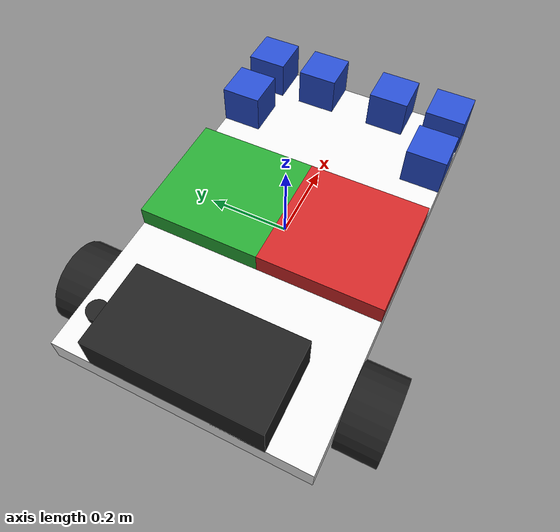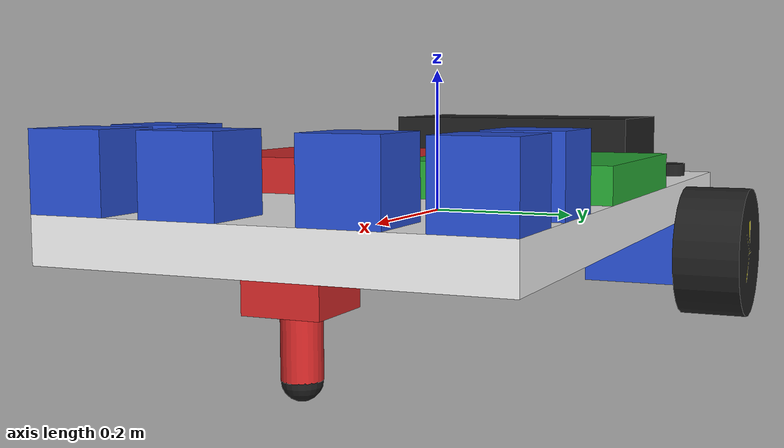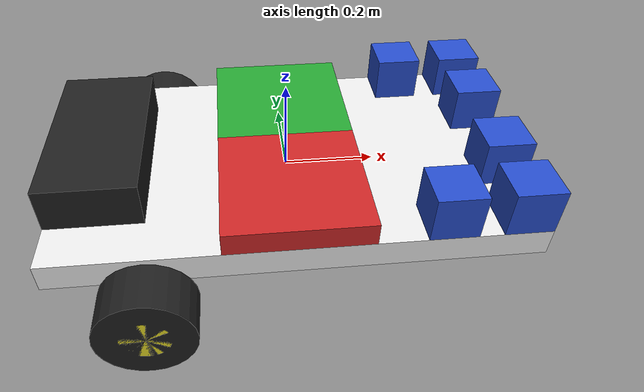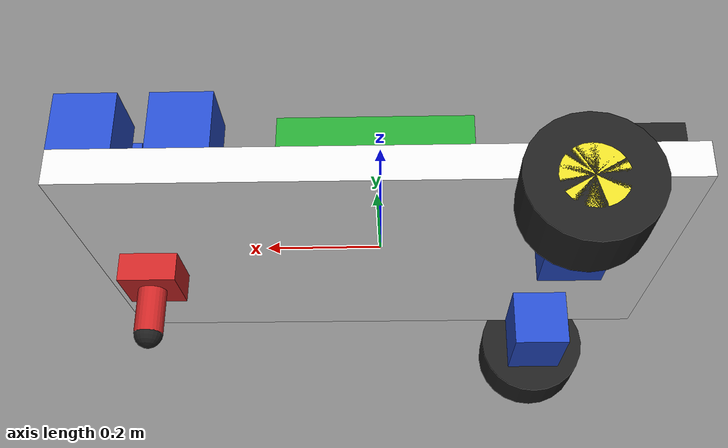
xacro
<?xml version="1.0"?>

<robot name="tuktuk" xmlns:xacro="http://www.ros.org/wiki/xacro">

    <xacro:include filename="properties.xacro"/>
    <xacro:include filename="materials.xacro"/>
    <xacro:include filename="macros.xacro"/>
    <xacro:include filename="gazebo.xacro"/>

    <link name="chassis">
        <xacro:default_inertial mass="${chassis_mass}"/>
        <visual>
            <geometry>
                <box size="${chassis_l} ${chassis_w} ${chassis_h}"/>
            </geometry>
            <material name="white"/>
        </visual>
        <collision>
            <geometry>
                <box size="${chassis_l} ${chassis_w} ${chassis_h}"/>
            </geometry>
        </collision>
    </link>

    <xacro:main_assembly/>

</robot>

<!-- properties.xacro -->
<robot xmlns:xacro="http://www.ros.org/wiki/xacro">

    <!-- Misc -->
    <xacro:property name="PI" value="3.14159265359"/>
    <xacro:property name="elimit" value="100.0"/>
    <xacro:property name="vlimit" value="3.14"/>

    <!-- Chassis -->
    <xacro:property name="chassis_l" value="1.0"/>
    <xacro:property name="chassis_w" value="0.6"/>
    <xacro:property name="chassis_h" value="0.06"/>

    <xacro:property name="chassis_mass" value="0.8"/>

    <!-- Wheels -->
    <xacro:property name="wheel_r" value="0.1"/>
    <xacro:property name="wheel_w" value="0.1"/>

    <xacro:property name="wheel_mass" value="0.08"/>

    <xacro:property name="iwheel_r" value="${wheel_r/2}"/>

    <xacro:property name="iwheel_mass" value="0.03"/>

    <!-- Motors -->
    <xacro:property name="motor_l" value="0.1"/>
    <xacro:property name="motor_w" value="0.15"/>
    <xacro:property name="motor_h" value="0.1"/>

    <xacro:property name="motor_x" value="-0.3"/>
    <xacro:property name="motor_z" value="-0.08"/>

    <xacro:property name="motor_mass" value="0.12"/>

    <!-- Electronics -->
    <xacro:property name="battery_l" value="0.2"/>
    <xacro:property name="battery_w" value="0.4"/>
    <xacro:property name="battery_h" value="0.1"/>

    <xacro:property name="battery_x" value="-0.4"/>
    <xacro:property name="battery_y" value="0"/>
    <xacro:property name="battery_z" value="0.075"/>

    <xacro:property name="battery_mass" value="0.35"/>

    <xacro:property name="switch_r" value="0.025"/>
    <xacro:property name="switch_w" value="0.02"/>

    <xacro:property name="switch_x" value="-0.4"/>
    <xacro:property name="switch_y" value="0.25"/>
    <xacro:property name="switch_z" value="0.04"/>

    <xacro:property name="switch_mass" value="0.005"/>

    <xacro:property name="controller_side" value="0.3"/>
    <xacro:property name="controller_h" value="0.05"/>

    <xacro:property name="controller_mass" value="0.04"/>
    <xacro:property name="ir_mass" value="0.01"/>
    <xacro:property name="ir_size" value="0.1"/>

    <!-- Caster -->
    <xacro:property name="caster_base_size" value="0.1"/>
    <xacro:property name="caster_base_h" value="0.05"/>

    <xacro:property name="caster_stud_r" value="0.025"/>
    <xacro:property name="caster_stud_h" value="0.08"/>

    <xacro:property name="caster_ball_r" value="0.025"/>

    <xacro:property name="caster_base_mass" value="0.03"/>
    <xacro:property name="caster_stud_mass" value="0.01"/>
    <xacro:property name="caster_ball_mass" value="0.02"/>

</robot>

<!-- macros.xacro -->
<robot xmlns:xacro="http://www.ros.org/wiki/xacro">

    <!-- Def Inertial -->
    <xacro:macro name="default_inertial" params="mass">
        <inertial>
            <mass value="${mass}"/>

            <origin xyz="0 0 0" rpy="0 0 0"/>

            <inertia
                ixx="${mass*0.001}"
                ixy="0"
                ixz="0"
                iyy="${mass*0.001}"
                iyz="0"
                izz="${mass*0.001}"/>
        </inertial>
    </xacro:macro>
    <xacro:macro name="zero_inertial">
        <inertial>
            <mass value="0"/>

            <origin xyz="0 0 0" rpy="0 0 0"/>

            <inertia
                ixx="0"
                ixy="0"
                ixz="0"
                iyy="0"
                iyz="0"
                izz="0"/>
        </inertial>
    </xacro:macro>

    <!-- IR Module -->
    <xacro:macro name="ir_module" params="name x y z">
        <link name="${name}">
            <xacro:default_inertial mass="${ir_mass}"/>
            <visual>
                <geometry>
                    <box size="${ir_size} ${ir_size} ${ir_size}"/>
                </geometry>
                <material name="blue"/>
            </visual>
            <collision>
                <geometry>
                    <box size="${ir_size} ${ir_size} ${ir_size}"/>
                </geometry>
            </collision>
        </link>

        <joint name="${name}_joint" type="fixed">
            <parent link="chassis"/>
            <child link="${name}"/>
            <origin xyz="${x} ${y} ${z}" rpy="0 0 0"/>
        </joint>
    </xacro:macro>

    <!-- Drive Side -->
    <xacro:macro name="drive_side" params="side motor_y wheel_y">

        <link name="motor${side}">
            <xacro:default_inertial mass="${motor_mass}"/>
            <visual>
                <geometry>
                    <box size="${motor_l} ${motor_w} ${motor_h}"/>
                </geometry>
                <material name="blue"/>
            </visual>
            <collision>
                <geometry>
                    <box size="${motor_l} ${motor_w} ${motor_h}"/>
                </geometry>
            </collision>
        </link>

        <joint name="motor${side}_joint" type="fixed">
            <parent link="chassis"/>
            <child link="motor${side}"/>
            <origin xyz="${motor_x} ${motor_y} ${motor_z}" rpy="0 0 0"/>
        </joint>

        <link name="iwheel${side}">
            <xacro:default_inertial mass="${iwheel_mass}"/>
            <visual>
                <geometry>
                    <cylinder radius="${iwheel_r}" length="${wheel_w}"/>
                </geometry>
                <material name="yellow"/>
            </visual>
            <collision>
                <geometry>
                    <cylinder radius="${iwheel_r}" length="${wheel_w}"/>
                </geometry>
            </collision>
        </link>
        <joint name="iwheel${side}_joint" type="continuous">
            <parent link="motor${side}"/>
            <child link="iwheel${side}"/>
            <origin xyz="0 ${wheel_y} 0" rpy="${PI/2} 0 0"/>
            <axis xyz="0 0 -1"/>
        </joint>

        <link name="wheel${side}">
            <xacro:default_inertial mass="${wheel_mass}"/>
            <visual>
                <geometry>
                    <cylinder radius="${wheel_r}" length="${wheel_w}"/>
                </geometry>
                <material name="black_2"/>
            </visual>
            <collision>
                 <geometry>
                    <cylinder radius="${wheel_r}" length="${wheel_w}"/>
                </geometry>
            </collision>
        </link>

        <joint name="wheel${side}_joint" type="fixed">
            <parent link="iwheel${side}"/>
            <child link="wheel${side}"/>
            <origin xyz="0 0 0" rpy="0 0 0"/>
        </joint>

    </xacro:macro>

    <!-- Caster -->
    <xacro:macro name="caster_assembly">

        <link name="caster_base">
            <xacro:default_inertial mass="${caster_base_mass}"/>
            <visual>
                <geometry>
                    <box size="${caster_base_size} ${caster_base_size} ${caster_base_h}"/>
                </geometry>
                <material name="red"/>
            </visual>
            <collision>
                <geometry>
                    <box size="${caster_base_size} ${caster_base_size} ${caster_base_h}"/>
                </geometry>
            </collision>
        </link>

        <joint name="caster_joint" type="fixed">
            <parent link="chassis"/>
            <child link="caster_base"/>
            <origin xyz="0.4 0 -0.055" rpy="0 0 0"/>
        </joint>

        <link name="caster_stud">
            <xacro:default_inertial mass="${caster_stud_mass}"/>
            <visual>
                <geometry>
                    <cylinder radius="${caster_stud_r}" length="${caster_stud_h}"/>
                </geometry>
                <material name="red"/>
            </visual>
            <collision>
                <geometry>
                    <cylinder radius="${caster_stud_r}" length="${caster_stud_h}"/>
                </geometry>
            </collision>
        </link>

        <joint name="stud_joint" type="fixed">
            <parent link="caster_base"/>
            <child link="caster_stud"/>
            <origin xyz="0 0 -0.065" rpy="0 0 0"/>
        </joint>

        <link name="dummy_link1">
            <xacro:default_inertial mass="${caster_stud_mass}"/>
            <collision >
                <geometry>
                    <sphere radius="0" />
                </geometry>
            </collision>
        </link>
        <link name="dummy_link2">
            <xacro:default_inertial mass="${caster_stud_mass}"/>
            <collision >
                <geometry>
                    <sphere radius="0" />
                </geometry>
            </collision>
        </link>

        <link name="caster_ball">
            <xacro:default_inertial mass="${caster_ball_mass}"/>
            <visual>
                <geometry>
                    <sphere radius="${caster_ball_r}"/>
                </geometry>
                <material name="black"/>
            </visual>
            <collision>
                <geometry>
                    <sphere radius="${caster_ball_r}"/>
                </geometry>
            </collision>
        </link>

        <joint name="ball_n_socketx" type="continuous">
            <parent link="caster_stud" />
            <child link="dummy_link1" />
            <origin rpy="0 0 0" xyz="0 0 -0.04"/>
            <axis xyz="1 0 0"/>
        </joint>

        <joint name="ball_n_sockety" type="continuous">
            <parent link="dummy_link1" />
            <child link="dummy_link2" />
            <origin rpy="0 0 0" xyz="0 0 0"/>
            <axis xyz="0 1 0"/>
        </joint>

        <joint name="ball_n_socketz" type="continuous">
            <parent link="dummy_link2" />
            <child link="caster_ball" />
            <origin rpy="0 0 0" xyz="0 0 0"/>
            <axis xyz="0 0 1"/>
        </joint>

    </xacro:macro>

    <!-- Controller -->
    <xacro:macro name="controller_assembly" params="name mat y_offset z_offset">
        <link name="${name}">
            <xacro:default_inertial mass="${controller_mass}"/>
            <visual>
                <geometry>
                    <box size="${controller_side} ${controller_side} ${controller_h}"/>
                </geometry>
                <material name="${mat}" />
            </visual>
            <collision>
                <geometry>
                    <box size="${controller_side} ${controller_side} ${controller_h}"/>
                </geometry>
            </collision>
        </link>
        <joint name="${name}_joint" type="fixed">
            <parent link="chassis" />
            <child link="${name}" />
            <origin rpy="0 0 0" xyz="0 ${y_offset} ${z_offset}"/>
        </joint>
    </xacro:macro>

    <!-- Battery and Switch -->
    <xacro:macro name="battery">
        <link name="battery">
            <xacro:default_inertial mass="${battery_mass}"/>
            <visual>
                <geometry>
                    <box size="${battery_l} ${battery_w} ${battery_h}"/>
                </geometry>
                <material name="black" />
            </visual>
            <collision>
                <geometry>
                    <box size="${battery_l} ${battery_w} ${battery_h}"/>
                </geometry>
            </collision>
        </link>
        <joint name="battery_joint" type="fixed">
            <parent link="chassis" />
            <child link="battery" />
            <origin rpy="0 0 0" xyz="${battery_x} ${battery_y} ${battery_z}"/>
        </joint>
    </xacro:macro>

    <xacro:macro name="switch">
        <link name="switch">
            <xacro:default_inertial mass="${switch_mass}"/>
            <visual>
                <geometry>
                    <cylinder radius="${switch_r}" length="${switch_w}" />
                </geometry>
                <material name="black" />
            </visual>
            <collision>
                <geometry>
                    <cylinder radius="${switch_r}" length="${switch_w}" />
                </geometry>
            </collision>
        </link>
        <joint name="switch_joint" type="fixed">
            <parent link="chassis" />
            <child link="switch" />
            <origin rpy="0 0 0" xyz="${switch_x} ${switch_y} ${switch_z}"/>
        </joint>
    </xacro:macro>

    <!-- Wheel Assembly -->
    <xacro:macro name="wheel_assembly">

        <xacro:caster_assembly/>

        <xacro:drive_side side="l" motor_y="0.225" wheel_y="0.125"/>

        <xacro:drive_side side="r" motor_y="-0.225" wheel_y="-0.125"/>

    </xacro:macro>

    <!-- Main Assembly -->
    <xacro:macro name="main_assembly">

        <xacro:ir_module name="ir1" x="0.45" y="0.25" z="0.08"/>
        <xacro:ir_module name="ir2" x="0.45" y="0.10" z="0.08"/>
        <xacro:ir_module name="ir3" x="0.45" y="-0.10" z="0.08"/>
        <xacro:ir_module name="ir4" x="0.45" y="-0.25" z="0.08"/>

        <xacro:ir_module name="irl" x="0.30" y="0.25" z="0.08"/>
        <xacro:ir_module name="irr" x="0.30" y="-0.25" z="0.08"/>

        <xacro:controller_assembly name="arduino" mat="green" y_offset="0.15" z_offset="0.055"/>
        <xacro:controller_assembly name="driver" mat="red" y_offset="-0.15" z_offset="0.055"/>

        <xacro:battery/>
        <xacro:switch/>

        <xacro:wheel_assembly/>

    </xacro:macro>

</robot>
